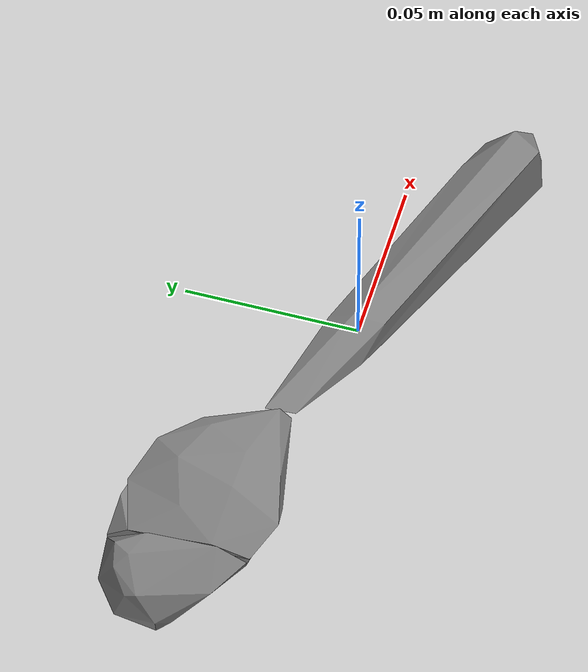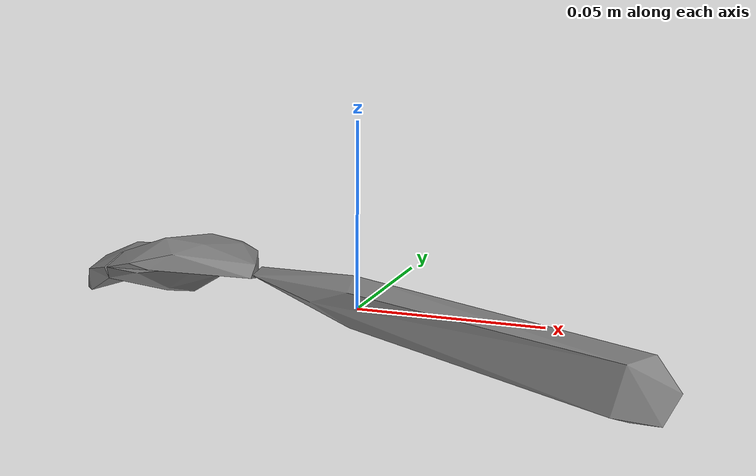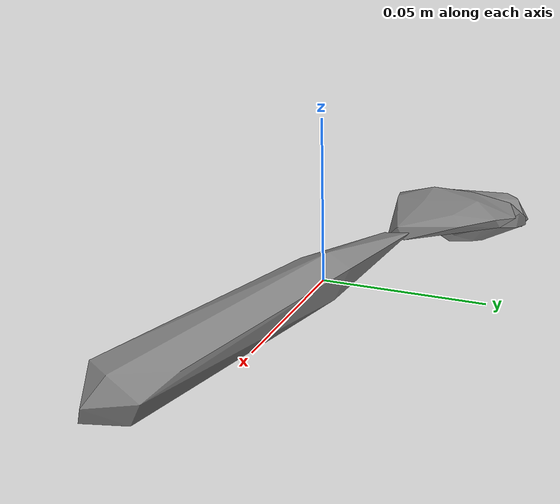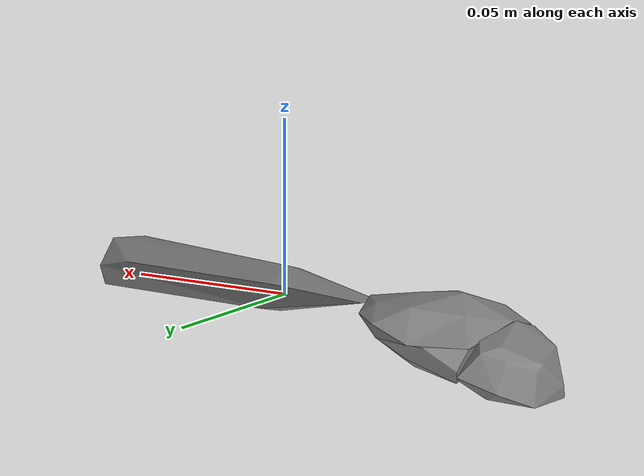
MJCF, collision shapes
<mujoco model="spoon">
  <compiler angle="radian" />

  <asset>
    <mesh name="spoon_visual_mesh" file="spoon/textured.obj" />
    <mesh name="spoon_collision_mesh_0" file="spoon/textured_coacd_0.stl" />
    <mesh name="spoon_collision_mesh_1" file="spoon/textured_coacd_1.stl" />
    <mesh name="spoon_collision_mesh_2" file="spoon/textured_coacd_2.stl" />
    <mesh name="spoon_collision_mesh_3" file="spoon/textured_coacd_3.stl" />
    <texture name="spoon_texture" type="2d" file="spoon/texture_map.png" />
    <material name="spoon_material" texture="spoon_texture" />
  </asset>

  <worldbody>
    <body name="spoon" pos="0 0 0" euler="0 0 0">
      <freejoint name="spoon_joint" />
      <geom name="spoon_visual_geom" type="mesh" mesh="spoon_visual_mesh" material="spoon_material" pos="0.01805591680130397 0.010160565119345408 -0.010048592434568833" euler="0 0 0" contype="0" conaffinity="0" group="0" />
      <geom name="spoon_collision_geom_0" type="mesh" mesh="spoon_collision_mesh_0" pos="0.01805591680130397 0.010160565119345408 -0.010048592434568833" euler="0 0 0" contype="1" conaffinity="1" group="3" />
      <geom name="spoon_collision_geom_1" type="mesh" mesh="spoon_collision_mesh_1" pos="0.01805591680130397 0.010160565119345408 -0.010048592434568833" euler="0 0 0" contype="1" conaffinity="1" group="3" />
      <geom name="spoon_collision_geom_2" type="mesh" mesh="spoon_collision_mesh_2" pos="0.01805591680130397 0.010160565119345408 -0.010048592434568833" euler="0 0 0" contype="1" conaffinity="1" group="3" />
      <geom name="spoon_collision_geom_3" type="mesh" mesh="spoon_collision_mesh_3" pos="0.01805591680130397 0.010160565119345408 -0.010048592434568833" euler="0 0 0" contype="1" conaffinity="1" group="3" />
      <inertial pos="0 0 0" euler="0 0 0" mass="0.03" diaginertia="0.001 0.001 0.001" />
    </body>
  </worldbody>
</mujoco>
